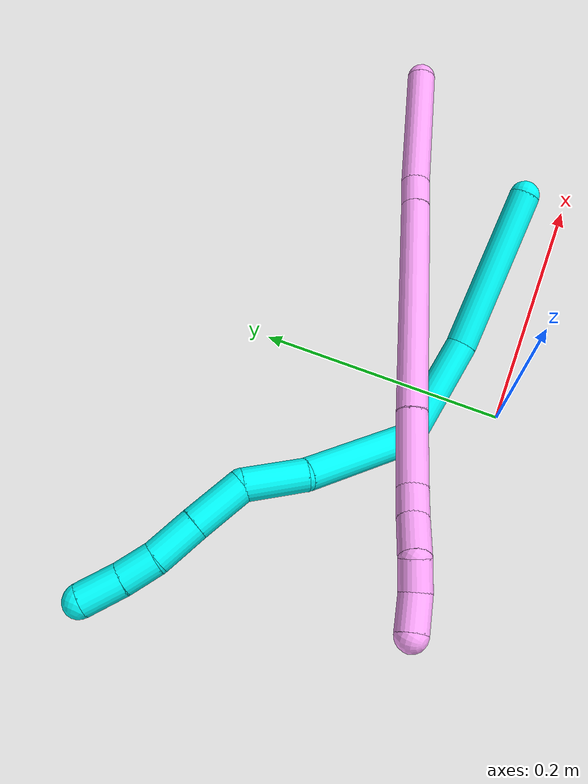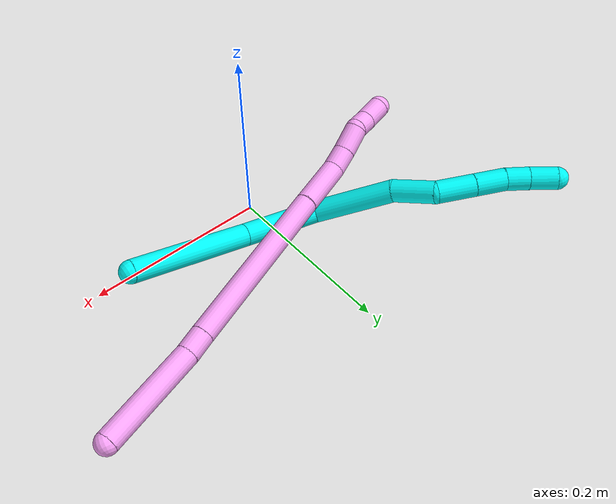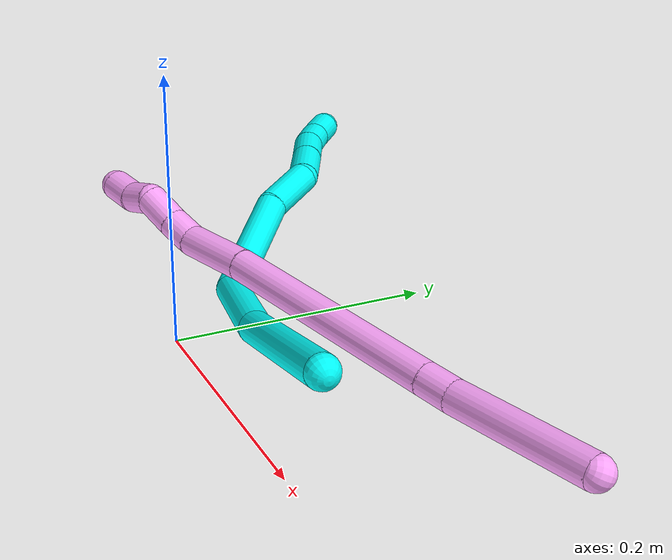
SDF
<sdf version="1.7">
 <world name="default">
  <model name="3">
   <static>0</static>
   <link name="3">
    <collision name="collision-cylinder-e_1_1_4">
     <pose>-0.011701 -0.015213 0.065538 0.228091 -0.172186 -0.019771</pose>
     <geometry><cylinder><radius>0.0125</radius><length>0.13658</length></cylinder></geometry>
     <surface>
      <friction><ode><mu>1.16</mu><mu2>1.16</mu2><slip1>0</slip1><slip2>0</slip2></ode></friction>
      <contact><ode><kp>1e+06</kp><kd>1</kd><max_vel>0</max_vel><min_depth>0.001</min_depth></ode></contact>
     </surface>
    </collision>
    <visual name="visual-cylinder-e_1_1_4">
     <pose>-0.011701 -0.015213 0.065538 0.228091 -0.172186 -0.019771</pose>
     <geometry><cylinder><radius>0.0125</radius><length>0.13658</length></cylinder></geometry>
     <material><ambient>0.003922 1 0.996078 1</ambient></material>
    </visual>
    <collision name="collision-cylinder-e_2_4_5">
     <pose>-0.031772 -0.032809 0.174084 0.055348 -0.191933 -0.005329</pose>
     <geometry><cylinder><radius>0.0125</radius><length>0.087759</length></cylinder></geometry>
     <surface>
      <friction><ode><mu>1.16</mu><mu2>1.16</mu2><slip1>0</slip1><slip2>0</slip2></ode></friction>
      <contact><ode><kp>1e+06</kp><kd>1</kd><max_vel>0</max_vel><min_depth>0.001</min_depth></ode></contact>
     </surface>
    </collision>
    <visual name="visual-cylinder-e_2_4_5">
     <pose>-0.031772 -0.032809 0.174084 0.055348 -0.191933 -0.005329</pose>
     <geometry><cylinder><radius>0.0125</radius><length>0.087759</length></cylinder></geometry>
     <material><ambient>0.003922 1 0.996078 1</ambient></material>
    </visual>
    <collision name="collision-cylinder-e_3_5_6">
     <pose>-0.054409 -0.004854 0.250124 -0.742921 -0.307988 0.120785</pose>
     <geometry><cylinder><radius>0.0125</radius><length>0.09413</length></cylinder></geometry>
     <surface>
      <friction><ode><mu>1.16</mu><mu2>1.16</mu2><slip1>0</slip1><slip2>0</slip2></ode></friction>
      <contact><ode><kp>1e+06</kp><kd>1</kd><max_vel>0</max_vel><min_depth>0.001</min_depth></ode></contact>
     </surface>
    </collision>
    <visual name="visual-cylinder-e_3_5_6">
     <pose>-0.054409 -0.004854 0.250124 -0.742921 -0.307988 0.120785</pose>
     <geometry><cylinder><radius>0.0125</radius><length>0.09413</length></cylinder></geometry>
     <material><ambient>0.003922 1 0.996078 1</ambient></material>
    </visual>
    <collision name="collision-cylinder-e_4_6_7">
     <pose>-0.08213 0.039901 0.296923 -0.808421 -0.593694 0.260216</pose>
     <geometry><cylinder><radius>0.0125</radius><length>0.048096</length></cylinder></geometry>
     <surface>
      <friction><ode><mu>1.16</mu><mu2>1.16</mu2><slip1>0</slip1><slip2>0</slip2></ode></friction>
      <contact><ode><kp>1e+06</kp><kd>1</kd><max_vel>0</max_vel><min_depth>0.001</min_depth></ode></contact>
     </surface>
    </collision>
    <visual name="visual-cylinder-e_4_6_7">
     <pose>-0.08213 0.039901 0.296923 -0.808421 -0.593694 0.260216</pose>
     <geometry><cylinder><radius>0.0125</radius><length>0.048096</length></cylinder></geometry>
     <material><ambient>0.003922 1 0.996078 1</ambient></material>
    </visual>
    <collision name="collision-cylinder-e_5_7_8">
     <pose>-0.10317 0.059406 0.329702 -0.261556 -0.367915 0.048935</pose>
     <geometry><cylinder><radius>0.0125</radius><length>0.042188</length></cylinder></geometry>
     <surface>
      <friction><ode><mu>1.16</mu><mu2>1.16</mu2><slip1>0</slip1><slip2>0</slip2></ode></friction>
      <contact><ode><kp>1e+06</kp><kd>1</kd><max_vel>0</max_vel><min_depth>0.001</min_depth></ode></contact>
     </surface>
    </collision>
    <visual name="visual-cylinder-e_5_7_8">
     <pose>-0.10317 0.059406 0.329702 -0.261556 -0.367915 0.048935</pose>
     <geometry><cylinder><radius>0.0125</radius><length>0.042188</length></cylinder></geometry>
     <material><ambient>0.003922 1 0.996078 1</ambient></material>
    </visual>
    <collision name="collision-cylinder-e_6_8_9">
     <pose>-0.116923 0.068167 0.364561 -0.227682 -0.36233 0.04188</pose>
     <geometry><cylinder><radius>0.0125</radius><length>0.034791</length></cylinder></geometry>
     <surface>
      <friction><ode><mu>1.16</mu><mu2>1.16</mu2><slip1>0</slip1><slip2>0</slip2></ode></friction>
      <contact><ode><kp>1e+06</kp><kd>1</kd><max_vel>0</max_vel><min_depth>0.001</min_depth></ode></contact>
     </surface>
    </collision>
    <visual name="visual-cylinder-e_6_8_9">
     <pose>-0.116923 0.068167 0.364561 -0.227682 -0.36233 0.04188</pose>
     <geometry><cylinder><radius>0.0125</radius><length>0.034791</length></cylinder></geometry>
     <material><ambient>0.003922 1 0.996078 1</ambient></material>
    </visual>
    <collision name="collision-cylinder-e_7_9_10">
     <pose>-0.129579 0.075366 0.391187 -0.316215 -0.519771 0.084738</pose>
     <geometry><cylinder><radius>0.0125</radius><length>0.026135</length></cylinder></geometry>
     <surface>
      <friction><ode><mu>1.16</mu><mu2>1.16</mu2><slip1>0</slip1><slip2>0</slip2></ode></friction>
      <contact><ode><kp>1e+06</kp><kd>1</kd><max_vel>0</max_vel><min_depth>0.001</min_depth></ode></contact>
     </surface>
    </collision>
    <visual name="visual-cylinder-e_7_9_10">
     <pose>-0.129579 0.075366 0.391187 -0.316215 -0.519771 0.084738</pose>
     <geometry><cylinder><radius>0.0125</radius><length>0.026135</length></cylinder></geometry>
     <material><ambient>0.003922 1 0.996078 1</ambient></material>
    </visual>
    <collision name="collision-cylinder-e_8_10_2">
     <pose>-0.144144 0.08395 0.413758 -0.405154 -0.561713 0.118367</pose>
     <geometry><cylinder><radius>0.0125</radius><length>0.030319</length></cylinder></geometry>
     <surface>
      <friction><ode><mu>1.16</mu><mu2>1.16</mu2><slip1>0</slip1><slip2>0</slip2></ode></friction>
      <contact><ode><kp>1e+06</kp><kd>1</kd><max_vel>0</max_vel><min_depth>0.001</min_depth></ode></contact>
     </surface>
    </collision>
    <visual name="visual-cylinder-e_8_10_2">
     <pose>-0.144144 0.08395 0.413758 -0.405154 -0.561713 0.118367</pose>
     <geometry><cylinder><radius>0.0125</radius><length>0.030319</length></cylinder></geometry>
     <material><ambient>0.003922 1 0.996078 1</ambient></material>
    </visual>
    <collision name="collision-sphere-2">
     <pose>-0.152219 0.089007 0.42555 0 -0 0</pose>
     <geometry><sphere><radius>0.0125</radius></sphere></geometry>
     <surface>
      <friction><ode><mu>1.16</mu><mu2>1.16</mu2><slip1>0</slip1><slip2>0</slip2></ode></friction>
      <contact><ode><kp>1e+06</kp><kd>1</kd><max_vel>0</max_vel><min_depth>0.001</min_depth></ode></contact>
     </surface>
    </collision>
    <visual name="visual-sphere-2">
     <pose>-0.152219 0.089007 0.42555 0 -0 0</pose>
     <geometry><sphere><radius>0.0125</radius></sphere></geometry>
     <material><ambient>0.003922 1 0.996078 1</ambient></material>
    </visual>
    <collision name="collision-sphere-10">
     <pose>-0.13607 0.078893 0.401967 0 -0 0</pose>
     <geometry><sphere><radius>0.0125</radius></sphere></geometry>
     <surface>
      <friction><ode><mu>1.16</mu><mu2>1.16</mu2><slip1>0</slip1><slip2>0</slip2></ode></friction>
      <contact><ode><kp>1e+06</kp><kd>1</kd><max_vel>0</max_vel><min_depth>0.001</min_depth></ode></contact>
     </surface>
    </collision>
    <visual name="visual-sphere-10">
     <pose>-0.13607 0.078893 0.401967 0 -0 0</pose>
     <geometry><sphere><radius>0.0125</radius></sphere></geometry>
     <material><ambient>0.003922 1 0.996078 1</ambient></material>
    </visual>
    <collision name="collision-sphere-9">
     <pose>-0.123089 0.071839 0.380407 0 -0 0</pose>
     <geometry><sphere><radius>0.0125</radius></sphere></geometry>
     <surface>
      <friction><ode><mu>1.16</mu><mu2>1.16</mu2><slip1>0</slip1><slip2>0</slip2></ode></friction>
      <contact><ode><kp>1e+06</kp><kd>1</kd><max_vel>0</max_vel><min_depth>0.001</min_depth></ode></contact>
     </surface>
    </collision>
    <visual name="visual-sphere-9">
     <pose>-0.123089 0.071839 0.380407 0 -0 0</pose>
     <geometry><sphere><radius>0.0125</radius></sphere></geometry>
     <material><ambient>0.003922 1 0.996078 1</ambient></material>
    </visual>
    <collision name="collision-sphere-4">
     <pose>-0.023401 -0.030427 0.131076 0 -0 0</pose>
     <geometry><sphere><radius>0.0125</radius></sphere></geometry>
     <surface>
      <friction><ode><mu>1.16</mu><mu2>1.16</mu2><slip1>0</slip1><slip2>0</slip2></ode></friction>
      <contact><ode><kp>1e+06</kp><kd>1</kd><max_vel>0</max_vel><min_depth>0.001</min_depth></ode></contact>
     </surface>
    </collision>
    <visual name="visual-sphere-4">
     <pose>-0.023401 -0.030427 0.131076 0 -0 0</pose>
     <geometry><sphere><radius>0.0125</radius></sphere></geometry>
     <material><ambient>0.003922 1 0.996078 1</ambient></material>
    </visual>
    <collision name="collision-sphere-1">
     <geometry><sphere><radius>0.0125</radius></sphere></geometry>
     <surface>
      <friction><ode><mu>1.16</mu><mu2>1.16</mu2><slip1>0</slip1><slip2>0</slip2></ode></friction>
      <contact><ode><kp>1e+06</kp><kd>1</kd><max_vel>0</max_vel><min_depth>0.001</min_depth></ode></contact>
     </surface>
    </collision>
    <visual name="visual-sphere-1">
     <geometry><sphere><radius>0.0125</radius></sphere></geometry>
     <material><ambient>0.003922 1 0.996078 1</ambient></material>
    </visual>
    <collision name="collision-sphere-8">
     <pose>-0.110757 0.064495 0.348715 0 -0 0</pose>
     <geometry><sphere><radius>0.0125</radius></sphere></geometry>
     <surface>
      <friction><ode><mu>1.16</mu><mu2>1.16</mu2><slip1>0</slip1><slip2>0</slip2></ode></friction>
      <contact><ode><kp>1e+06</kp><kd>1</kd><max_vel>0</max_vel><min_depth>0.001</min_depth></ode></contact>
     </surface>
    </collision>
    <visual name="visual-sphere-8">
     <pose>-0.110757 0.064495 0.348715 0 -0 0</pose>
     <geometry><sphere><radius>0.0125</radius></sphere></geometry>
     <material><ambient>0.003922 1 0.996078 1</ambient></material>
    </visual>
    <collision name="collision-sphere-5">
     <pose>-0.040142 -0.035192 0.217091 0 -0 0</pose>
     <geometry><sphere><radius>0.0125</radius></sphere></geometry>
     <surface>
      <friction><ode><mu>1.16</mu><mu2>1.16</mu2><slip1>0</slip1><slip2>0</slip2></ode></friction>
      <contact><ode><kp>1e+06</kp><kd>1</kd><max_vel>0</max_vel><min_depth>0.001</min_depth></ode></contact>
     </surface>
    </collision>
    <visual name="visual-sphere-5">
     <pose>-0.040142 -0.035192 0.217091 0 -0 0</pose>
     <geometry><sphere><radius>0.0125</radius></sphere></geometry>
     <material><ambient>0.003922 1 0.996078 1</ambient></material>
    </visual>
    <collision name="collision-sphere-6">
     <pose>-0.068677 0.025485 0.283156 0 -0 0</pose>
     <geometry><sphere><radius>0.0125</radius></sphere></geometry>
     <surface>
      <friction><ode><mu>1.16</mu><mu2>1.16</mu2><slip1>0</slip1><slip2>0</slip2></ode></friction>
      <contact><ode><kp>1e+06</kp><kd>1</kd><max_vel>0</max_vel><min_depth>0.001</min_depth></ode></contact>
     </surface>
    </collision>
    <visual name="visual-sphere-6">
     <pose>-0.068677 0.025485 0.283156 0 -0 0</pose>
     <geometry><sphere><radius>0.0125</radius></sphere></geometry>
     <material><ambient>0.003922 1 0.996078 1</ambient></material>
    </visual>
    <collision name="collision-sphere-7">
     <pose>-0.095583 0.054316 0.310689 0 -0 0</pose>
     <geometry><sphere><radius>0.0125</radius></sphere></geometry>
     <surface>
      <friction><ode><mu>1.16</mu><mu2>1.16</mu2><slip1>0</slip1><slip2>0</slip2></ode></friction>
      <contact><ode><kp>1e+06</kp><kd>1</kd><max_vel>0</max_vel><min_depth>0.001</min_depth></ode></contact>
     </surface>
    </collision>
    <visual name="visual-sphere-7">
     <pose>-0.095583 0.054316 0.310689 0 -0 0</pose>
     <geometry><sphere><radius>0.0125</radius></sphere></geometry>
     <material><ambient>0.003922 1 0.996078 1</ambient></material>
    </visual>
    <inertial>
     <pose>-0.059271 0.011796 0.222831 0 -0 0</pose>
     <mass>0.5</mass>
     <inertia>
      <ixx>0.000364</ixx>
      <ixy>0</ixy>
      <ixz>0</ixz>
      <iyy>0.000368</iyy>
      <iyz>0</iyz>
      <izz>0.000111</izz>
     </inertia>
    </inertial>
   </link>
   <pose>0.173966 0.036678 0.052408 1.51327 -0.577646 -1.58615</pose>
  </model>
  <model name="4">
   <static>0</static>
   <link name="4">
    <collision name="collision-cylinder-e_1_1_4">
     <pose>-0.046865 -0.021271 0.025124 0.702536 -0.958448 -0.376344</pose>
     <geometry><cylinder><radius>0.0125</radius><length>0.114541</length></cylinder></geometry>
     <surface>
      <friction><ode><mu>1.16</mu><mu2>1.16</mu2><slip1>0</slip1><slip2>0</slip2></ode></friction>
      <contact><ode><kp>1e+06</kp><kd>1</kd><max_vel>0</max_vel><min_depth>0.001</min_depth></ode></contact>
     </surface>
    </collision>
    <visual name="visual-cylinder-e_1_1_4">
     <pose>-0.046865 -0.021271 0.025124 0.702536 -0.958448 -0.376344</pose>
     <geometry><cylinder><radius>0.0125</radius><length>0.114541</length></cylinder></geometry>
     <material><ambient>1 0.65098 0.996078 1</ambient></material>
    </visual>
    <collision name="collision-cylinder-e_2_4_5">
     <pose>-0.104105 -0.046366 0.056894 0.52223 -0.934335 -0.267956</pose>
     <geometry><cylinder><radius>0.0125</radius><length>0.025804</length></cylinder></geometry>
     <surface>
      <friction><ode><mu>1.16</mu><mu2>1.16</mu2><slip1>0</slip1><slip2>0</slip2></ode></friction>
      <contact><ode><kp>1e+06</kp><kd>1</kd><max_vel>0</max_vel><min_depth>0.001</min_depth></ode></contact>
     </surface>
    </collision>
    <visual name="visual-cylinder-e_2_4_5">
     <pose>-0.104105 -0.046366 0.056894 0.52223 -0.934335 -0.267956</pose>
     <geometry><cylinder><radius>0.0125</radius><length>0.025804</length></cylinder></geometry>
     <material><ambient>1 0.65098 0.996078 1</ambient></material>
    </visual>
    <collision name="collision-cylinder-e_3_5_6">
     <pose>-0.192587 -0.078732 0.111593 0.535944 -0.9497 -0.280457</pose>
     <geometry><cylinder><radius>0.0125</radius><length>0.192086</length></cylinder></geometry>
     <surface>
      <friction><ode><mu>1.16</mu><mu2>1.16</mu2><slip1>0</slip1><slip2>0</slip2></ode></friction>
      <contact><ode><kp>1e+06</kp><kd>1</kd><max_vel>0</max_vel><min_depth>0.001</min_depth></ode></contact>
     </surface>
    </collision>
    <visual name="visual-cylinder-e_3_5_6">
     <pose>-0.192587 -0.078732 0.111593 0.535944 -0.9497 -0.280457</pose>
     <geometry><cylinder><radius>0.0125</radius><length>0.192086</length></cylinder></geometry>
     <material><ambient>1 0.65098 0.996078 1</ambient></material>
    </visual>
    <collision name="collision-cylinder-e_4_6_7">
     <pose>-0.294378 -0.118097 0.174394 0.633192 -0.913129 -0.319099</pose>
     <geometry><cylinder><radius>0.0125</radius><length>0.059854</length></cylinder></geometry>
     <surface>
      <friction><ode><mu>1.16</mu><mu2>1.16</mu2><slip1>0</slip1><slip2>0</slip2></ode></friction>
      <contact><ode><kp>1e+06</kp><kd>1</kd><max_vel>0</max_vel><min_depth>0.001</min_depth></ode></contact>
     </surface>
    </collision>
    <visual name="visual-cylinder-e_4_6_7">
     <pose>-0.294378 -0.118097 0.174394 0.633192 -0.913129 -0.319099</pose>
     <geometry><cylinder><radius>0.0125</radius><length>0.059854</length></cylinder></geometry>
     <material><ambient>1 0.65098 0.996078 1</ambient></material>
    </visual>
    <collision name="collision-cylinder-e_5_7_8">
     <pose>-0.328064 -0.130143 0.196576 0.162792 -0.925161 -0.081314</pose>
     <geometry><cylinder><radius>0.0125</radius><length>0.025045</length></cylinder></geometry>
     <surface>
      <friction><ode><mu>1.16</mu><mu2>1.16</mu2><slip1>0</slip1><slip2>0</slip2></ode></friction>
      <contact><ode><kp>1e+06</kp><kd>1</kd><max_vel>0</max_vel><min_depth>0.001</min_depth></ode></contact>
     </surface>
    </collision>
    <visual name="visual-cylinder-e_5_7_8">
     <pose>-0.328064 -0.130143 0.196576 0.162792 -0.925161 -0.081314</pose>
     <geometry><cylinder><radius>0.0125</radius><length>0.025045</length></cylinder></geometry>
     <material><ambient>1 0.65098 0.996078 1</ambient></material>
    </visual>
    <collision name="collision-cylinder-e_6_8_9">
     <pose>-0.350123 -0.131553 0.213836 0.019302 -0.886964 -0.009169</pose>
     <geometry><cylinder><radius>0.0125</radius><length>0.031108</length></cylinder></geometry>
     <surface>
      <friction><ode><mu>1.16</mu><mu2>1.16</mu2><slip1>0</slip1><slip2>0</slip2></ode></friction>
      <contact><ode><kp>1e+06</kp><kd>1</kd><max_vel>0</max_vel><min_depth>0.001</min_depth></ode></contact>
     </surface>
    </collision>
    <visual name="visual-cylinder-e_6_8_9">
     <pose>-0.350123 -0.131553 0.213836 0.019302 -0.886964 -0.009169</pose>
     <geometry><cylinder><radius>0.0125</radius><length>0.031108</length></cylinder></geometry>
     <material><ambient>1 0.65098 0.996078 1</ambient></material>
    </visual>
    <collision name="collision-cylinder-e_7_9_10">
     <pose>-0.370763 -0.138437 0.228259 0.968919 -0.813022 -0.445604</pose>
     <geometry><cylinder><radius>0.0125</radius><length>0.023632</length></cylinder></geometry>
     <surface>
      <friction><ode><mu>1.16</mu><mu2>1.16</mu2><slip1>0</slip1><slip2>0</slip2></ode></friction>
      <contact><ode><kp>1e+06</kp><kd>1</kd><max_vel>0</max_vel><min_depth>0.001</min_depth></ode></contact>
     </surface>
    </collision>
    <visual name="visual-cylinder-e_7_9_10">
     <pose>-0.370763 -0.138437 0.228259 0.968919 -0.813022 -0.445604</pose>
     <geometry><cylinder><radius>0.0125</radius><length>0.023632</length></cylinder></geometry>
     <material><ambient>1 0.65098 0.996078 1</ambient></material>
    </visual>
    <collision name="collision-cylinder-e_8_10_2">
     <pose>-0.391328 -0.149056 0.23886 0.579019 -1.0315 -0.334596</pose>
     <geometry><cylinder><radius>0.0125</radius><length>0.02793</length></cylinder></geometry>
     <surface>
      <friction><ode><mu>1.16</mu><mu2>1.16</mu2><slip1>0</slip1><slip2>0</slip2></ode></friction>
      <contact><ode><kp>1e+06</kp><kd>1</kd><max_vel>0</max_vel><min_depth>0.001</min_depth></ode></contact>
     </surface>
    </collision>
    <visual name="visual-cylinder-e_8_10_2">
     <pose>-0.391328 -0.149056 0.23886 0.579019 -1.0315 -0.334596</pose>
     <geometry><cylinder><radius>0.0125</radius><length>0.02793</length></cylinder></geometry>
     <material><ambient>1 0.65098 0.996078 1</ambient></material>
    </visual>
    <collision name="collision-sphere-2">
     <pose>-0.403311 -0.15298 0.244862 0 -0 0</pose>
     <geometry><sphere><radius>0.0125</radius></sphere></geometry>
     <surface>
      <friction><ode><mu>1.16</mu><mu2>1.16</mu2><slip1>0</slip1><slip2>0</slip2></ode></friction>
      <contact><ode><kp>1e+06</kp><kd>1</kd><max_vel>0</max_vel><min_depth>0.001</min_depth></ode></contact>
     </surface>
    </collision>
    <visual name="visual-sphere-2">
     <pose>-0.403311 -0.15298 0.244862 0 -0 0</pose>
     <geometry><sphere><radius>0.0125</radius></sphere></geometry>
     <material><ambient>1 0.65098 0.996078 1</ambient></material>
    </visual>
    <collision name="collision-sphere-10">
     <pose>-0.379345 -0.145131 0.232857 0 -0 0</pose>
     <geometry><sphere><radius>0.0125</radius></sphere></geometry>
     <surface>
      <friction><ode><mu>1.16</mu><mu2>1.16</mu2><slip1>0</slip1><slip2>0</slip2></ode></friction>
      <contact><ode><kp>1e+06</kp><kd>1</kd><max_vel>0</max_vel><min_depth>0.001</min_depth></ode></contact>
     </surface>
    </collision>
    <visual name="visual-sphere-10">
     <pose>-0.379345 -0.145131 0.232857 0 -0 0</pose>
     <geometry><sphere><radius>0.0125</radius></sphere></geometry>
     <material><ambient>1 0.65098 0.996078 1</ambient></material>
    </visual>
    <collision name="collision-sphere-9">
     <pose>-0.36218 -0.131743 0.223661 0 -0 0</pose>
     <geometry><sphere><radius>0.0125</radius></sphere></geometry>
     <surface>
      <friction><ode><mu>1.16</mu><mu2>1.16</mu2><slip1>0</slip1><slip2>0</slip2></ode></friction>
      <contact><ode><kp>1e+06</kp><kd>1</kd><max_vel>0</max_vel><min_depth>0.001</min_depth></ode></contact>
     </surface>
    </collision>
    <visual name="visual-sphere-9">
     <pose>-0.36218 -0.131743 0.223661 0 -0 0</pose>
     <geometry><sphere><radius>0.0125</radius></sphere></geometry>
     <material><ambient>1 0.65098 0.996078 1</ambient></material>
    </visual>
    <collision name="collision-sphere-4">
     <pose>-0.093729 -0.042541 0.050247 0 -0 0</pose>
     <geometry><sphere><radius>0.0125</radius></sphere></geometry>
     <surface>
      <friction><ode><mu>1.16</mu><mu2>1.16</mu2><slip1>0</slip1><slip2>0</slip2></ode></friction>
      <contact><ode><kp>1e+06</kp><kd>1</kd><max_vel>0</max_vel><min_depth>0.001</min_depth></ode></contact>
     </surface>
    </collision>
    <visual name="visual-sphere-4">
     <pose>-0.093729 -0.042541 0.050247 0 -0 0</pose>
     <geometry><sphere><radius>0.0125</radius></sphere></geometry>
     <material><ambient>1 0.65098 0.996078 1</ambient></material>
    </visual>
    <collision name="collision-sphere-1">
     <geometry><sphere><radius>0.0125</radius></sphere></geometry>
     <surface>
      <friction><ode><mu>1.16</mu><mu2>1.16</mu2><slip1>0</slip1><slip2>0</slip2></ode></friction>
      <contact><ode><kp>1e+06</kp><kd>1</kd><max_vel>0</max_vel><min_depth>0.001</min_depth></ode></contact>
     </surface>
    </collision>
    <visual name="visual-sphere-1">
     <geometry><sphere><radius>0.0125</radius></sphere></geometry>
     <material><ambient>1 0.65098 0.996078 1</ambient></material>
    </visual>
    <collision name="collision-sphere-8">
     <pose>-0.338066 -0.131364 0.204011 0 -0 0</pose>
     <geometry><sphere><radius>0.0125</radius></sphere></geometry>
     <surface>
      <friction><ode><mu>1.16</mu><mu2>1.16</mu2><slip1>0</slip1><slip2>0</slip2></ode></friction>
      <contact><ode><kp>1e+06</kp><kd>1</kd><max_vel>0</max_vel><min_depth>0.001</min_depth></ode></contact>
     </surface>
    </collision>
    <visual name="visual-sphere-8">
     <pose>-0.338066 -0.131364 0.204011 0 -0 0</pose>
     <geometry><sphere><radius>0.0125</radius></sphere></geometry>
     <material><ambient>1 0.65098 0.996078 1</ambient></material>
    </visual>
    <collision name="collision-sphere-5">
     <pose>-0.114481 -0.050191 0.06354 0 -0 0</pose>
     <geometry><sphere><radius>0.0125</radius></sphere></geometry>
     <surface>
      <friction><ode><mu>1.16</mu><mu2>1.16</mu2><slip1>0</slip1><slip2>0</slip2></ode></friction>
      <contact><ode><kp>1e+06</kp><kd>1</kd><max_vel>0</max_vel><min_depth>0.001</min_depth></ode></contact>
     </surface>
    </collision>
    <visual name="visual-sphere-5">
     <pose>-0.114481 -0.050191 0.06354 0 -0 0</pose>
     <geometry><sphere><radius>0.0125</radius></sphere></geometry>
     <material><ambient>1 0.65098 0.996078 1</ambient></material>
    </visual>
    <collision name="collision-sphere-6">
     <pose>-0.270693 -0.107272 0.159647 0 -0 0</pose>
     <geometry><sphere><radius>0.0125</radius></sphere></geometry>
     <surface>
      <friction><ode><mu>1.16</mu><mu2>1.16</mu2><slip1>0</slip1><slip2>0</slip2></ode></friction>
      <contact><ode><kp>1e+06</kp><kd>1</kd><max_vel>0</max_vel><min_depth>0.001</min_depth></ode></contact>
     </surface>
    </collision>
    <visual name="visual-sphere-6">
     <pose>-0.270693 -0.107272 0.159647 0 -0 0</pose>
     <geometry><sphere><radius>0.0125</radius></sphere></geometry>
     <material><ambient>1 0.65098 0.996078 1</ambient></material>
    </visual>
    <collision name="collision-sphere-7">
     <pose>-0.318062 -0.128921 0.189141 0 -0 0</pose>
     <geometry><sphere><radius>0.0125</radius></sphere></geometry>
     <surface>
      <friction><ode><mu>1.16</mu><mu2>1.16</mu2><slip1>0</slip1><slip2>0</slip2></ode></friction>
      <contact><ode><kp>1e+06</kp><kd>1</kd><max_vel>0</max_vel><min_depth>0.001</min_depth></ode></contact>
     </surface>
    </collision>
    <visual name="visual-sphere-7">
     <pose>-0.318062 -0.128921 0.189141 0 -0 0</pose>
     <geometry><sphere><radius>0.0125</radius></sphere></geometry>
     <material><ambient>1 0.65098 0.996078 1</ambient></material>
    </visual>
    <inertial>
     <pose>-0.202934 -0.081222 0.119721 0 -0 0</pose>
     <mass>0.5</mass>
     <inertia>
      <ixx>0.000263</ixx>
      <ixy>0</ixy>
      <ixz>0</ixz>
      <iyy>0.00057</iyy>
      <iyz>0</iyz>
      <izz>0.000874</izz>
     </inertia>
    </inertial>
   </link>
   <pose>0.286408 0.162511 0.012349 1.07863 0.16108 -0.315643</pose>
  </model>
 </world>
</sdf>
